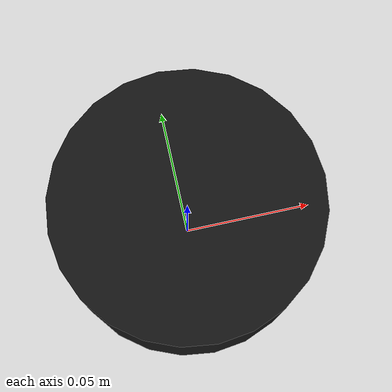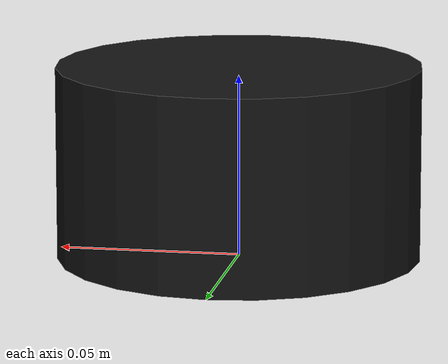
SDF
<?xml version="1.0" encoding="UTF-8"?>
<sdf version="1.9">
  <model name="rplidar_a3m1">
    <pose>0 0 0 0 0 0</pose>
    <self_collide>false</self_collide>
    <static>false</static>

    <link name="rplidar_a3m1/base_link">

      <inertial>
        <pose>0 0 0.0265 0 0 0</pose>
        <mass>0.190</mass>
        <inertia>
          <ixx>0.00016323</ixx>
          <ixy>0</ixy>
          <ixz>0</ixz>
          <iyy>0.00016323</iyy>
          <iyz>0</iyz>
          <izz>0.00023750</izz>
        </inertia>
      </inertial>

      <visual name="rplidar_a3m1_visual">
        <pose>0 0 0.0265 0 0 0</pose>
        <geometry>
          <cylinder>
            <radius>0.05</radius>
            <length>0.053</length>
          </cylinder>
        </geometry>
        <material>
          <ambient>0.05 0.05 0.05 1</ambient>
          <diffuse>0.08 0.08 0.08 1</diffuse>
          <specular>0.2 0.2 0.2 1</specular>
        </material>
      </visual>

      <collision name="rplidar_a3m1_collision">
        <pose>0 0 0.0265 0 0 0</pose>
        <geometry>
          <cylinder>
            <radius>0.05</radius>
            <length>0.053</length>
          </cylinder>
        </geometry>
      </collision>

      <sensor name="rplidar_a3m1_sensor" type="gpu_lidar">
        <pose>0 0 0.053 0 0 0</pose>
        <topic>scan</topic>
        <gz_frame_id>rplidar_frame</gz_frame_id>
        <update_rate>10</update_rate>
        <always_on>true</always_on>
        <visualize>true</visualize>
        <lidar>
          <scan>
            <horizontal>
              <samples>1600</samples>
              <resolution>1</resolution>
              <min_angle>-3.141592653589793</min_angle>
              <max_angle>3.141592653589793</max_angle>
            </horizontal>
            <vertical>
              <samples>1</samples>
              <resolution>1</resolution>
              <min_angle>0</min_angle>
              <max_angle>0</max_angle>
            </vertical>
          </scan>
          <range>
            <min>0.2</min>
            <max>25.0</max>
            <resolution>0.01</resolution>
          </range>
          <noise>
            <type>gaussian</type>
            <mean>0.0</mean>
            <stddev>0.01</stddev>
          </noise>
        </lidar>
      </sensor>

      <gravity>true</gravity>
      <velocity_decay/>

    </link>
  </model>
</sdf>
